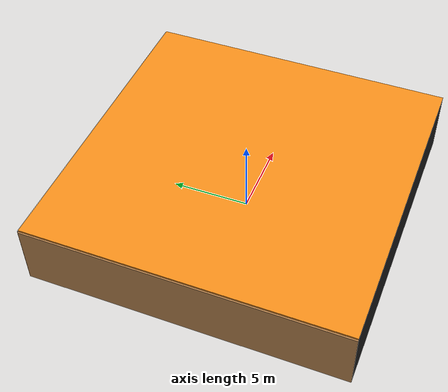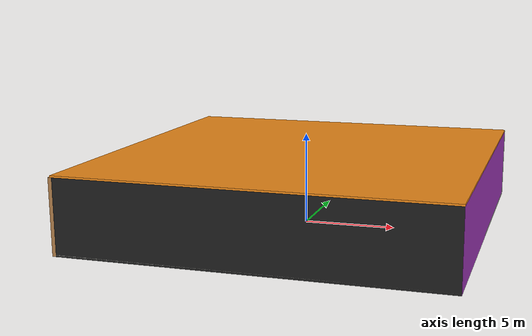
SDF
<sdf version="1.4">
 <world name="default">
  <physics type="ode">
   <max_step_size>0.001</max_step_size>
   <real_time_factor>1</real_time_factor>
   <real_time_update_rate>1000</real_time_update_rate>
   <gravity>0 0 -9.8</gravity>
  </physics>
  <scene><ambient>0.4 0.4 0.4 1</ambient><background>0.7 0.7 0.7 1</background><shadows>1</shadows></scene>
  <model name="Surrounding">
   <static>1</static>
   <link name="Ceiling">
    <collision name="Ceiling_Collision"><geometry><box><size>20 20 0.1</size></box></geometry></collision>
    <visual name="Ceiling_Visual">
     <geometry><box><size>20 20 0.1</size></box></geometry>
     <material>
      <script><uri>file://media/materials/scripts/gazebo.material</uri><name>Gazebo/Orange</name></script>
     </material>
    </visual>
    <pose>0 0 4.05 0 0 0</pose>
   </link>
   <link name="Wall_South">
    <collision name="Wall_South_Collision">
     <geometry><box><size>20 0 4</size></box></geometry>
     <pose>0 0 2 0 -0 0</pose>
    </collision>
    <visual name="Wall_South_Visual">
     <pose>0 0 2 0 -0 0</pose>
     <geometry><box><size>20 0 4</size></box></geometry>
     <material>
      <script><uri>file://media/materials/scripts/gazebo.material</uri><name>Gazebo/Black</name></script>
     </material>
    </visual>
    <velocity_decay><linear>0</linear><angular>0</angular></velocity_decay>
    <pose>0 -10 0 0 -0 0</pose>
   </link>
   <link name="Wall_East">
    <collision name="Wall_21_Collision">
     <geometry><box><size>20 0 4</size></box></geometry>
     <pose>0 0 2 0 -0 0</pose>
    </collision>
    <visual name="Wall_21_Visual">
     <pose>0 0 2 0 -0 0</pose>
     <geometry><box><size>20 0 4</size></box></geometry>
     <material>
      <script><uri>file://media/materials/scripts/gazebo.material</uri><name>Gazebo/Purple</name></script>
     </material>
    </visual>
    <velocity_decay><linear>0</linear><angular>0</angular></velocity_decay>
    <pose>10 0 0 0 -0 1.5708</pose>
   </link>
   <link name="Wall_North">
    <collision name="Wall_22_Collision">
     <geometry><box><size>20 0.2 4</size></box></geometry>
     <pose>0 0 2 0 -0 0</pose>
    </collision>
    <visual name="Wall_22_Visual">
     <pose>0 0 2 0 -0 0</pose>
     <geometry><box><size>20 0.2 4</size></box></geometry>
     <material>
      <script><uri>file://media/materials/scripts/gazebo.material</uri><name>Gazebo/CeilingTiled</name></script>
     </material>
    </visual>
    <velocity_decay><linear>0</linear><angular>0</angular></velocity_decay>
    <pose>0 10 0 0 -0 0</pose>
   </link>
   <link name="Wall_West">
    <collision name="Wall_23_Collision">
     <geometry><box><size>20 0.2 4</size></box></geometry>
     <pose>0 0 2 0 -0 0</pose>
    </collision>
    <visual name="Wall_23_Visual">
     <pose>0 0 2 0 -0 0</pose>
     <geometry><box><size>20 0.2 4</size></box></geometry>
     <material>
      <script><uri>file://media/materials/scripts/gazebo.material</uri><name>Gazebo/Wood</name></script>
     </material>
    </visual>
    <velocity_decay><linear>0</linear><angular>0</angular></velocity_decay>
    <pose>-10 0 0 0 0 -1.5708</pose>
   </link>
   <link name="Ground_link">
    <collision name="collision">
     <pose>0 0 .05 0 -0 0</pose>
     <geometry><box><size>20 20 0.1</size></box></geometry>
    </collision>
    <visual name="visual">
     <pose>0 0 .05 0 -0 0</pose>
     <geometry><box><size>20 20 0.1</size></box></geometry>
     <material>
      <script><uri>file://media/materials/scripts/gazebo.material</uri><name>Gazebo/CeilingTiled</name></script>
     </material>
    </visual>
   </link>
   <static>1</static>
  </model>
  <spherical_coordinates>
   <surface_model>EARTH_WGS84</surface_model>
   <latitude_deg>0</latitude_deg>
   <longitude_deg>0</longitude_deg>
   <elevation>0</elevation>
   <heading_deg>0</heading_deg>
  </spherical_coordinates>
  <light name="lightball_0" type="diffuse">
   <diffuse>0.8 0.8 0.8 1</diffuse>
   <specular>0.2 0.2 0.2 1</specular>
   <attenuation>
    <range>100</range>
    <constant>0.7</constant>
    <linear>0.01</linear>
    <quadratic>0.001</quadratic>
   </attenuation>
   <direction>-0.5 0.1 -0.9</direction>
   <pose>7.09588856008 -7.80606498231 2.82634552905 0 0 0</pose>
  </light>
  <light name="lightball_1" type="diffuse">
   <diffuse>0.8 0.8 0.8 1</diffuse>
   <specular>0.2 0.2 0.2 1</specular>
   <attenuation>
    <range>100</range>
    <constant>0.7</constant>
    <linear>0.01</linear>
    <quadratic>0.001</quadratic>
   </attenuation>
   <direction>-0.5 0.1 -0.9</direction>
   <pose>-5.09075800073 2.32756829139 1.83559080172 0 0 0</pose>
  </light>
  <light name="lightball_2" type="diffuse">
   <diffuse>0.8 0.8 0.8 1</diffuse>
   <specular>0.2 0.2 0.2 1</specular>
   <attenuation>
    <range>100</range>
    <constant>0.7</constant>
    <linear>0.01</linear>
    <quadratic>0.001</quadratic>
   </attenuation>
   <direction>-0.5 0.1 -0.9</direction>
   <pose>-7.07496649195 1.55422665384 3.52534958566 0 0 0</pose>
  </light>
  <light name="lightball_3" type="diffuse">
   <diffuse>0.8 0.8 0.8 1</diffuse>
   <specular>0.2 0.2 0.2 1</specular>
   <attenuation>
    <range>100</range>
    <constant>0.7</constant>
    <linear>0.01</linear>
    <quadratic>0.001</quadratic>
   </attenuation>
   <direction>-0.5 0.1 -0.9</direction>
   <pose>-1.44704445104 2.66753007865 3.84387382271 0 0 0</pose>
  </light>
  <light name="lightball_4" type="diffuse">
   <diffuse>0.8 0.8 0.8 1</diffuse>
   <specular>0.2 0.2 0.2 1</specular>
   <attenuation>
    <range>100</range>
    <constant>0.7</constant>
    <linear>0.01</linear>
    <quadratic>0.001</quadratic>
   </attenuation>
   <direction>-0.5 0.1 -0.9</direction>
   <pose>2.33895419627 -8.48309817009 2.8654975958 0 0 0</pose>
  </light>
  <light name="lightball_5" type="diffuse">
   <diffuse>0.8 0.8 0.8 1</diffuse>
   <specular>0.2 0.2 0.2 1</specular>
   <attenuation>
    <range>100</range>
    <constant>0.7</constant>
    <linear>0.01</linear>
    <quadratic>0.001</quadratic>
   </attenuation>
   <direction>-0.5 0.1 -0.9</direction>
   <pose>-4.03554379435 -0.0978681652023 0.986259391068 0 0 0</pose>
  </light>
  <include>
   <uri>model://construction_cone</uri>
   <pose>-6.3030147146 -0.504587198007 0 0 0 1.85962116812</pose>
  </include>
  <include>
   <uri>model://textured_shapes</uri>
   <pose>-4.92296344634 0.340347396039 0 0 0 0.254688204079</pose>
  </include>
  <include><uri>model://cabinet</uri><pose>-3.84707886469 4.98005385755 0 0 0 1.9699347227</pose></include>
  <include><uri>model://cabinet</uri><pose>-2.06160425491 6.82842008351 0 0 0 1.51504871017</pose></include>
  <include><uri>model://cabinet</uri><pose>2.51926319878 6.33864475545 0 0 0 0.957857381109</pose></include>
  <include><uri>model://cabinet</uri><pose>7.79898940238 -6.52640418422 0 0 0 1.28394562687</pose></include>
 </world>
</sdf>

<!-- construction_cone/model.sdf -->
<sdf version="1.5">
  <model name="Construction Cone">
    <link name="link">
      <collision name="collision">
        <geometry>
          <mesh>
            <scale>10 10 10</scale>
            <uri>file://isr-testbed/construction_cone/meshes/construction_cone.dae</uri>
          </mesh>
        </geometry>
      </collision>
      <visual name="visual">
        <geometry>
          <mesh>
            <scale>10 10 10</scale>
            <uri>file://isr-testbed/construction_cone/meshes/construction_cone.dae</uri>
          </mesh>
        </geometry>
      </visual>
    </link>
  </model>
</sdf>

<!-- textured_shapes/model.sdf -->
<sdf version="1.6">
  <model name="textured_shapes">
    <pose>0 0 0.5 0 0 0</pose>
    <link name="box">
      <pose>0 -1.5 0 0 0 0</pose>
      <collision name="collision">
        <geometry>
          <box>
            <size>1 1 1</size>
          </box>
        </geometry>
      </collision>
      <visual name="visual">
        <geometry>
          <box>
            <size>1 1 1</size>
          </box>
        </geometry>
        <material>
          <script>
            <uri>model://../model_source/models/textured_shapes/materials/scripts</uri>
            <uri>model://../model_source/models/textured_shapes/materials/textures</uri>
            <name>TexturedShape/Squares</name>
          </script>
        </material>
      </visual>
    </link>
    <link name="sphere">
      <collision name="collision">
        <geometry>
          <sphere>
            <radius>0.5</radius>
          </sphere>
        </geometry>
      </collision>
      <visual name="visual">
        <geometry>
          <sphere>
            <radius>0.5</radius>
          </sphere>
        </geometry>
        <material>
          <script>
            <uri>model://../model_source/models/textured_shapes/materials/scripts</uri>
            <uri>model://../model_source/models/textured_shapes/materials/textures</uri>
            <name>TexturedShape/Squares</name>
          </script>
        </material>
      </visual>
    </link>
    <link name="cylinder">
      <pose>0 1.5 0 0 0 0</pose>
      <collision name="collision">
        <geometry>
          <cylinder>
            <radius>0.5</radius>
            <length>1</length>
          </cylinder>
        </geometry>
      </collision>
      <visual name="visual">
        <geometry>
          <cylinder>
            <radius>0.5</radius>
            <length>1</length>
          </cylinder>
        </geometry>
        <material>
          <script>
            <uri>model://../model_source/models/textured_shapes/materials/scripts</uri>
            <uri>model://../model_source/models/textured_shapes/materials/textures</uri>
            <name>TexturedShape/Squares</name>
          </script>
        </material>
      </visual>
    </link>
  </model>
</sdf>

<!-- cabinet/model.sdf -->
<sdf version="1.5">
  <model name="cabinet">
    <static>true</static>
    <link name="cabinet_bottom_plate">
      <inertial>
        <pose>0 0 -1 0 0 0</pose>
        <inertia>
          <ixx>2.050000</ixx>
          <ixy>0</ixy>
          <ixz>0</ixz>
          <iyy>2.050000</iyy>
          <iyz>0</iyz>
          <izz>2.050000</izz>
        </inertia>
        <mass>25.000000</mass>
      </inertial>
      <collision name="cabinet_bottom_plate_geom">
        <pose>0 0 0.010000 0 0 0</pose>
        <geometry>
          <box>
            <size>0.450000 0.450000 0.020000</size>
          </box>
        </geometry>
      </collision>
      <visual name="cabinet_bottom_plate_geom_visual">
        <pose>0 0 0.010000 0 0 0</pose>
        <geometry>
          <box>
            <size>0.450000 0.450000 0.020000</size>
          </box>
        </geometry>
        <material>
          <script>
            <uri>model://media/materials/scripts/gazebo.material</uri>
            <name>Gazebo/Wood</name>
          </script>
        </material>
      </visual>
      <collision name="cabinet_bottom_plate_geom_cabinet_back_plate">
        <pose>0.235000 0 0.510000 0 0 0</pose>
        <geometry>
          <box>
            <size>0.020000 0.450000 1.020000</size>
          </box>
        </geometry>
      </collision>
      <visual name="cabinet_bottom_plate_geom_cabinet_back_plate_visual">
        <pose>0.235000 0 0.510000 0 0 0</pose>
        <geometry>
          <box>
            <size>0.020000 0.450000 1.020000</size>
          </box>
        </geometry>
        <material>
          <script>
            <uri>model://media/materials/scripts/gazebo.material</uri>
            <name>Gazebo/Wood</name>
          </script>
        </material>
      </visual>
      <collision name="cabinet_bottom_plate_geom_cabinet_left_plate">
        <pose>0 0.235000 0.510000 0 0 0</pose>
        <geometry>
          <box>
            <size>0.450000 0.020000 1.020000</size>
          </box>
        </geometry>
      </collision>
      <visual name="cabinet_bottom_plate_geom_cabinet_left_plate_visual">
        <pose>0 0.235000 0.510000 0 0 0</pose>
        <geometry>
          <box>
            <size>0.450000 0.020000 1.020000</size>
          </box>
        </geometry>
        <material>
          <script>
            <uri>model://media/materials/scripts/gazebo.material</uri>
            <name>Gazebo/Wood</name>
          </script>
        </material>
      </visual>
      <collision name="cabinet_bottom_plate_geom_cabinet_middle_plate">
        <pose>0 0 0.510000 0 0 0</pose>
        <geometry>
          <box>
            <size>0.450000 0.450000 0.020000</size>
          </box>
        </geometry>
      </collision>
      <visual name="cabinet_bottom_plate_geom_cabinet_middle_plate_visual">
        <pose>0 0 0.510000 0 0 0</pose>
        <geometry>
          <box>
            <size>0.450000 0.450000 0.020000</size>
          </box>
        </geometry>
        <material>
          <script>
            <uri>model://media/materials/scripts/gazebo.material</uri>
            <name>Gazebo/Wood</name>
          </script>
        </material>
      </visual>
      <collision name="cabinet_bottom_plate_geom_cabinet_right_plate">
        <pose>0 -0.235000 0.510000 0 0 0</pose>
        <geometry>
          <box>
            <size>0.450000 0.020000 1.020000</size>
          </box>
        </geometry>
      </collision>
      <visual name="cabinet_bottom_plate_geom_cabinet_right_plate_visual">
        <pose>0 -0.235000 0.510000 0 0 0</pose>
        <geometry>
          <box>
            <size>0.450000 0.020000 1.020000</size>
          </box>
        </geometry>
        <material>
          <script>
            <uri>model://media/materials/scripts/gazebo.material</uri>
            <name>Gazebo/Wood</name>
          </script>
        </material>
      </visual>
      <collision name="cabinet_bottom_plate_geom_cabinet_top_plate">
        <pose>0 0 1.010000 0 0 0</pose>
        <geometry>
          <box>
            <size>0.450000 0.450000 0.020000</size>
          </box>
        </geometry>
      </collision>
      <visual name="cabinet_bottom_plate_geom_cabinet_top_plate_visual">
        <pose>0 0 1.010000 0 0 0</pose>
        <geometry>
          <box>
            <size>0.450000 0.450000 0.020000</size>
          </box>
        </geometry>
        <material>
          <script>
            <uri>model://media/materials/scripts/gazebo.material</uri>
            <name>Gazebo/Wood</name>
          </script>
        </material>
      </visual>
    </link>
  </model>
</sdf>
